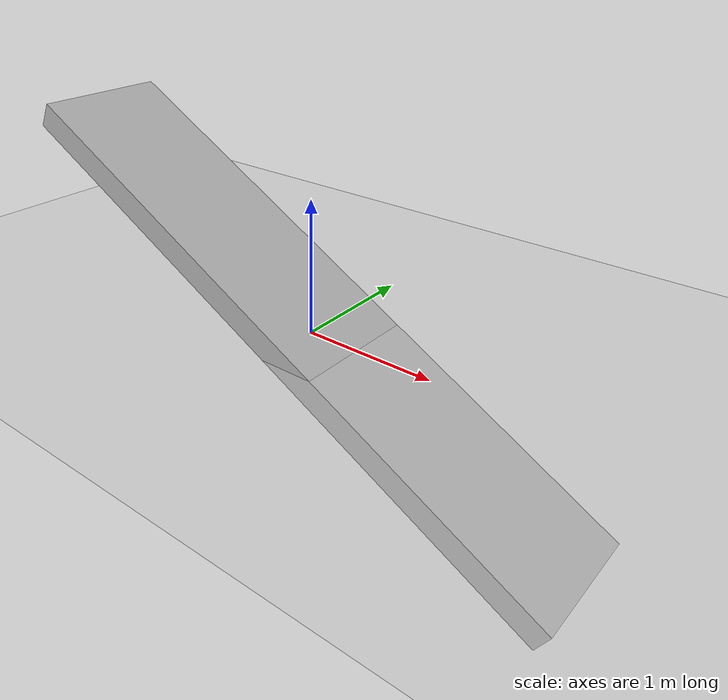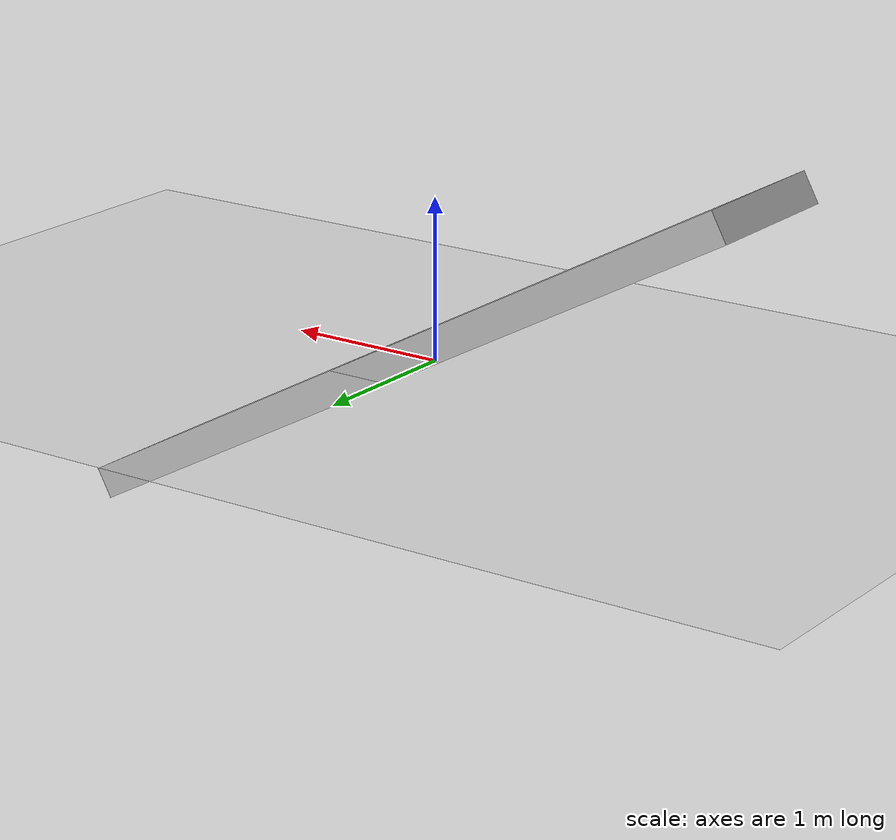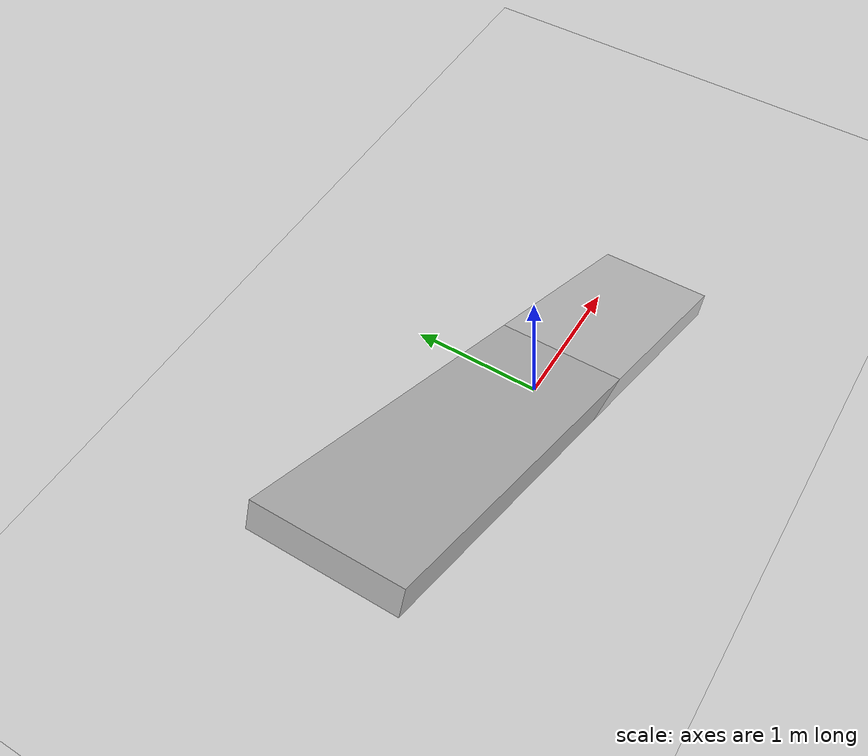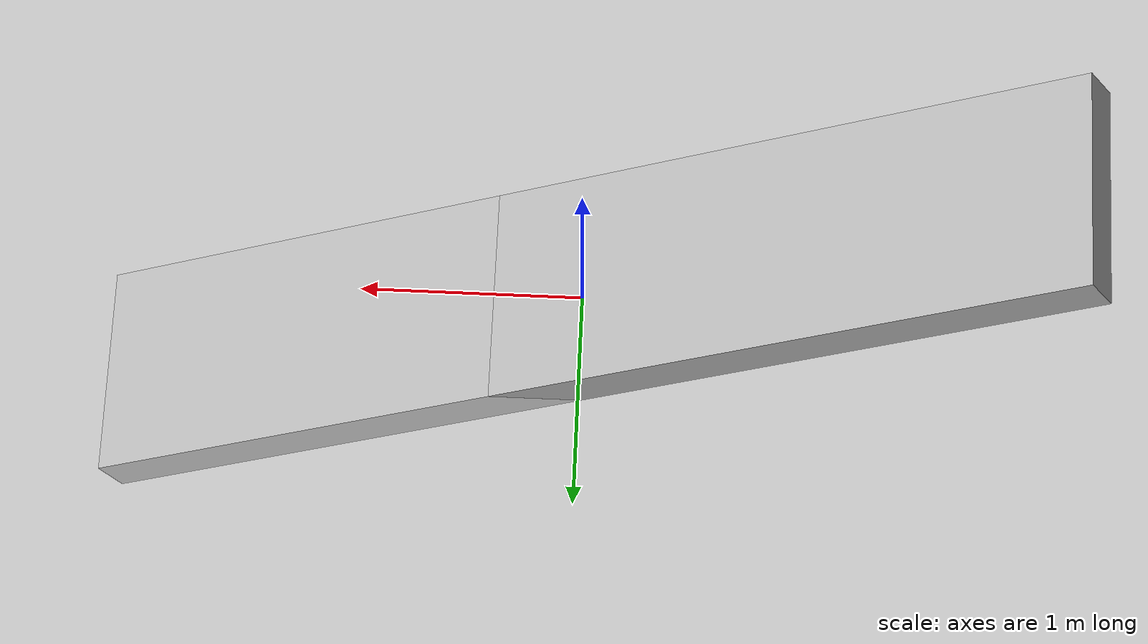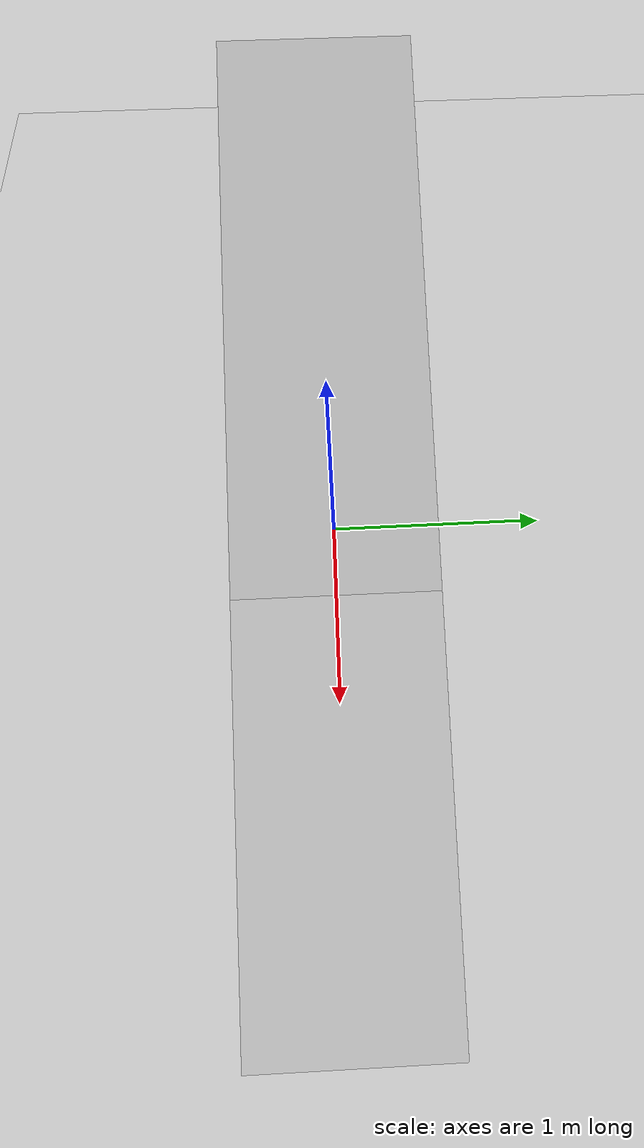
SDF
<?xml version="1.0" ?>
<sdf version="1.4">
  <world name="default">
    <include>
      <uri>model://ground_plane</uri>
    </include>
    <include>
      <uri>model://sun</uri>
    </include>
    <model name="box">
      <static>true</static>

      <pose>0 0 0.1 0 0.5 0</pose>
      <link name="link">
        <collision name="collision">
          <geometry>
            <box>
              <size>5 1 0.2</size>
            </box>
          </geometry>
        </collision>
        <visual name="visual">
          <geometry>
            <box>
              <size>5 1 0.2</size>
            </box>
          </geometry>
        </visual>
      </link>
    </model>
  </world>
</sdf>
